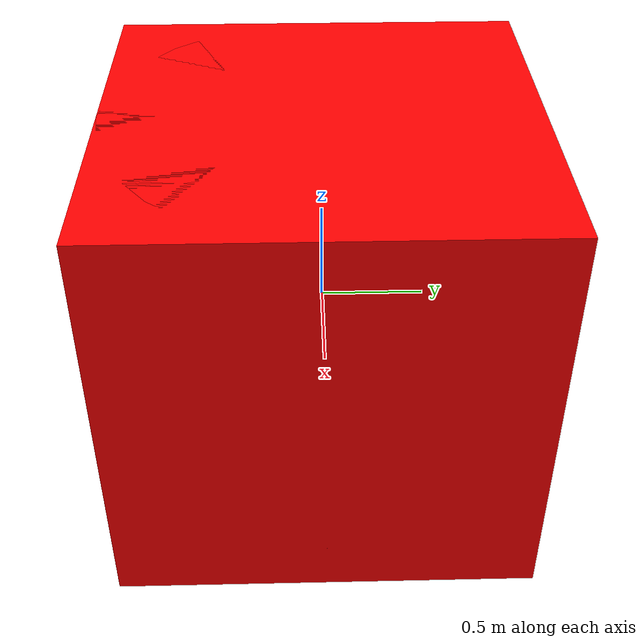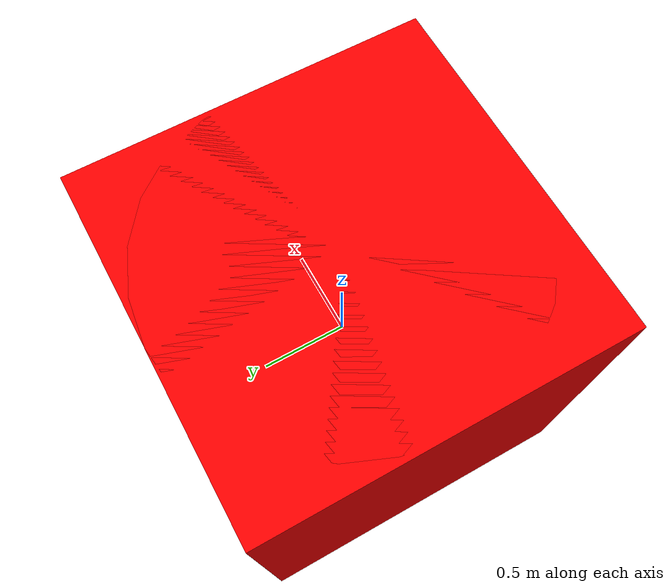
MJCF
<mujoco>
    <include file="include_default.xml" />

    <worldbody>
        <geom type="box" />
        <body childclass="sub" name="body0">
            <geom type="ellipsoid"/>
            <geom type="sphere" rgba="0 0 1 0"/>
            <geom type="cylinder" class="main"/>
        </body>
    </worldbody>
</mujoco>

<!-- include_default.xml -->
<mujoco>
    <default class="main">
        <geom size="1 1 1" rgba="1 0 0 1" />
        <default class="sub">
            <geom rgba="0 1 0 1" />
        </default>
    </default>
</mujoco>
